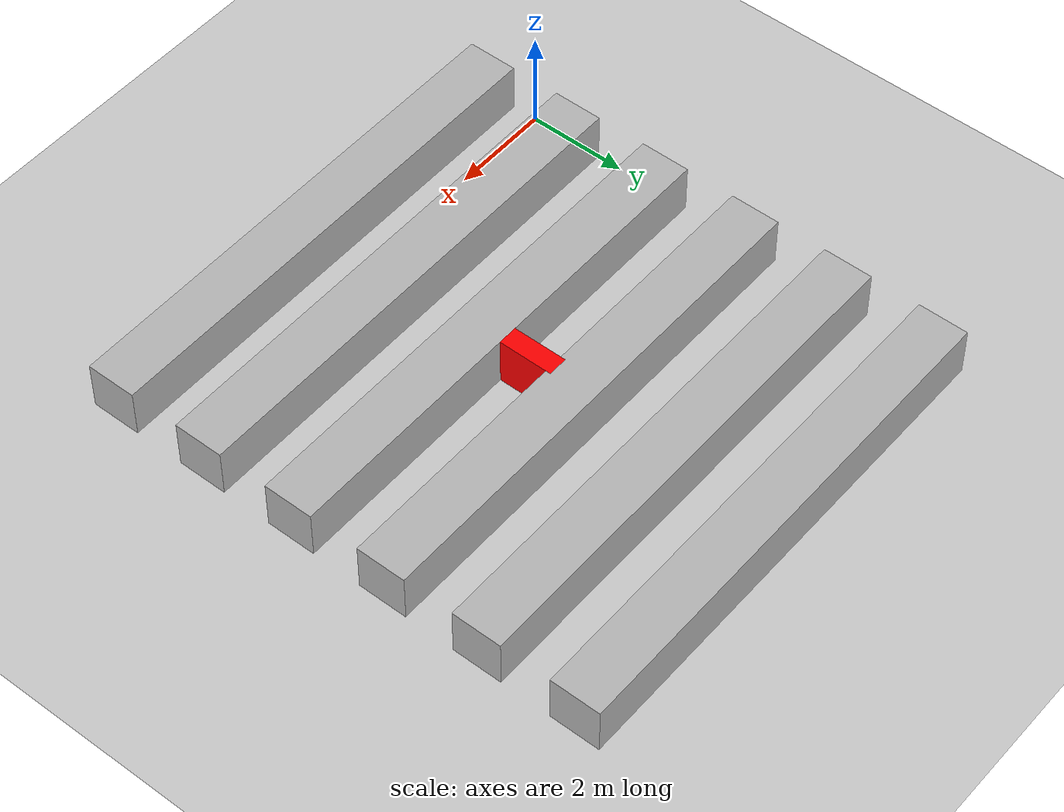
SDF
<?xml version="1.0" ?>
<sdf version="1.6">
  <world name="greenhouse">

    <include><uri>model://sun</uri></include>
    <include><uri>model://ground_plane</uri></include>

    <!-- ========== CROP ROW 1 ========== -->
    <model name="row1_right">
      <static>true</static>
      <pose>5 -1.0 0.5 0 0 0</pose>
      <link name="link">
        <collision name="collision">
          <geometry><box><size>10 1.0 1</size></box></geometry>
        </collision>
        <visual name="visual">
          <geometry><box><size>10 1.0 1</size></box></geometry>
        </visual>
      </link>
    </model>

    <model name="row1_left">
      <static>true</static>
      <pose>5 1.0 0.5 0 0 0</pose>
      <link name="link">
        <collision name="collision">
          <geometry><box><size>10 1.0 1</size></box></geometry>
        </collision>
        <visual name="visual">
          <geometry><box><size>10 1.0 1</size></box></geometry>
        </visual>
      </link>
    </model>

    <!-- ========== CROP ROW 2 ========== -->
    <model name="row2_left">
      <static>true</static>
      <pose>5 3.0 0.5 0 0 0</pose>
      <link name="link">
        <collision name="collision">
          <geometry><box><size>10 1.0 1</size></box></geometry>
        </collision>
        <visual name="visual">
          <geometry><box><size>10 1.0 1</size></box></geometry>
        </visual>
      </link>
    </model>

    <!-- ========== CROP ROW 3 ========== -->
    <model name="row3_left">
      <static>true</static>
      <pose>5 5.0 0.5 0 0 0</pose>
      <link name="link">
        <collision name="collision">
          <geometry><box><size>10 1.0 1</size></box></geometry>
        </collision>
        <visual name="visual">
          <geometry><box><size>10 1.0 1</size></box></geometry>
        </visual>
      </link>
    </model>

    <!-- ========== CROP ROW 4 ========== -->
    <model name="row4_left">
      <static>true</static>
      <pose>5 7.0 0.5 0 0 0</pose>
      <link name="link">
        <collision name="collision">
          <geometry><box><size>10 1.0 1</size></box></geometry>
        </collision>
        <visual name="visual">
          <geometry><box><size>10 1.0 1</size></box></geometry>
        </visual>
      </link>
    </model>

    <!-- ========== CROP ROW 5 ========== -->
    <model name="row5_left">
      <static>true</static>
      <pose>5 9.0 0.5 0 0 0</pose>
      <link name="link">
        <collision name="collision">
          <geometry><box><size>10 1.0 1</size></box></geometry>
        </collision>
        <visual name="visual">
          <geometry><box><size>10 1.0 1</size></box></geometry>
        </visual>
      </link>
    </model>

    <!-- ========== OBSTACLE (blocks row 3) ========== -->
    <model name="obstacle">
      <static>true</static>
      <pose>5 4.0 0.5 0 0 0</pose>
      <link name="link">
        <collision name="collision">
          <geometry><box><size>0.4 1.2 1</size></box></geometry>
        </collision>
        <visual name="visual">
          <geometry><box><size>0.4 1.2 1</size></box></geometry>
          <material>
            <ambient>1 0 0 1</ambient>
          </material>
        </visual>
      </link>
    </model>

  </world>
</sdf>
